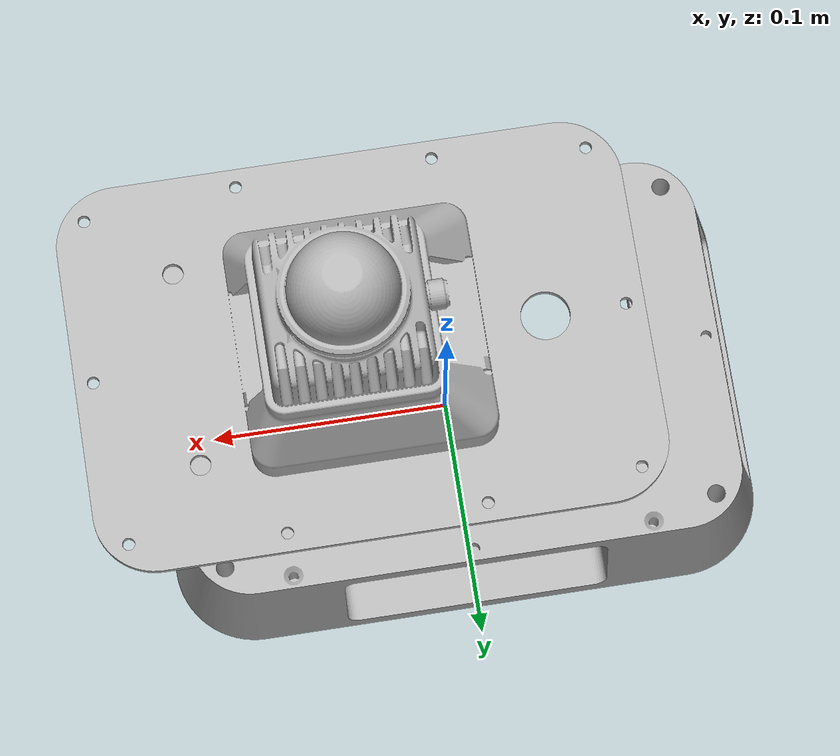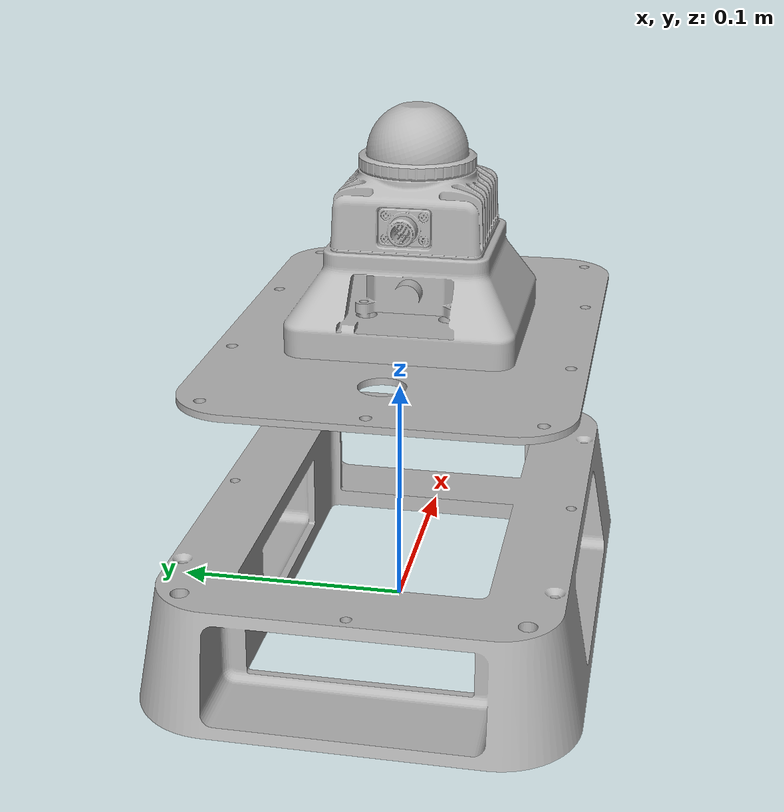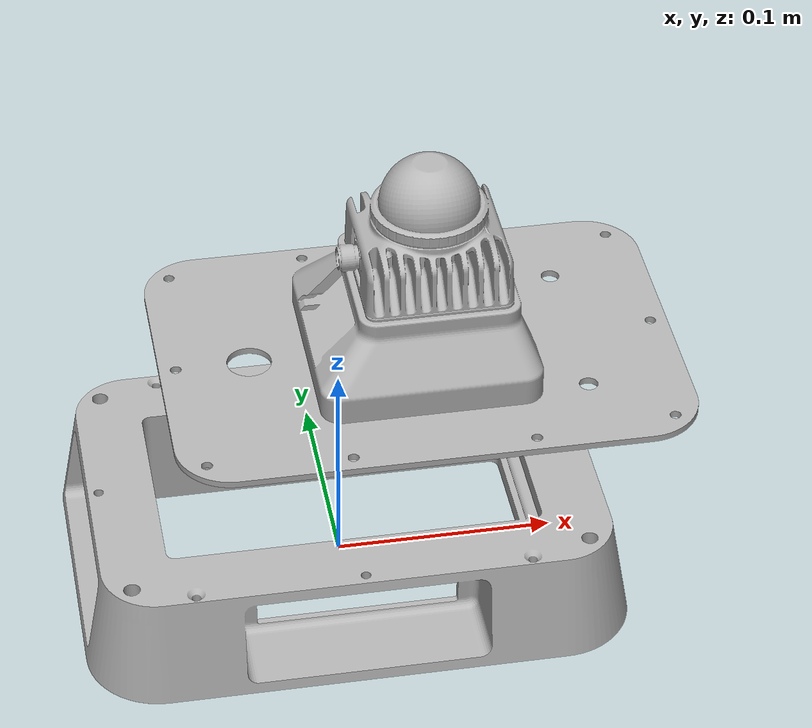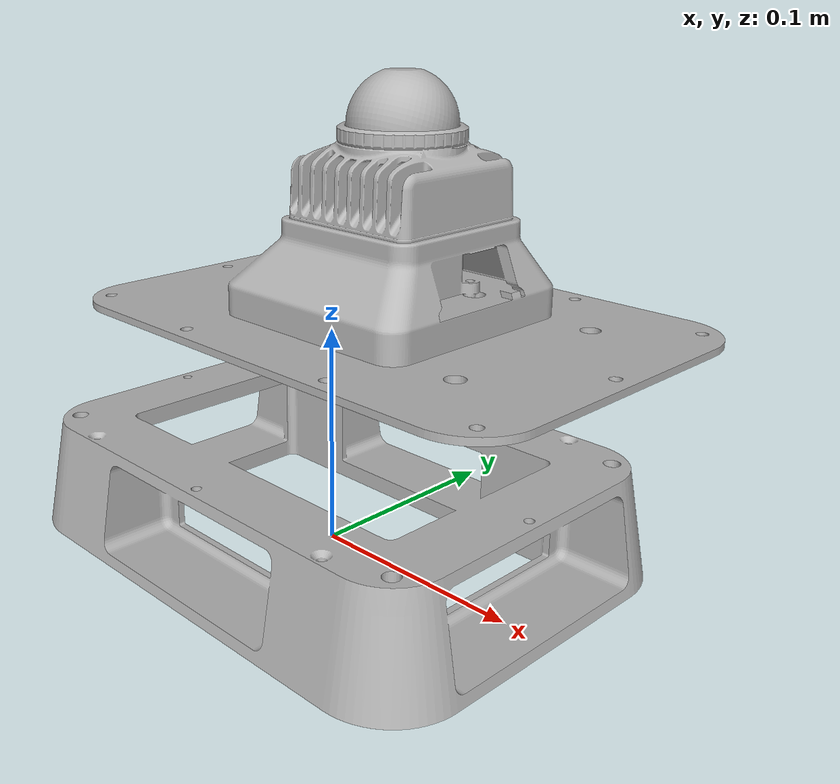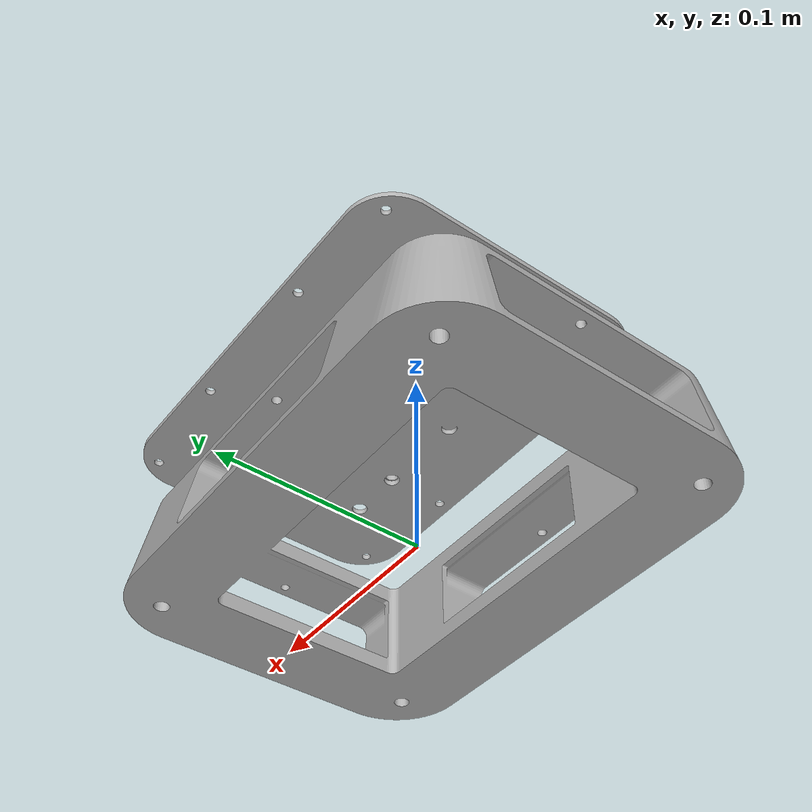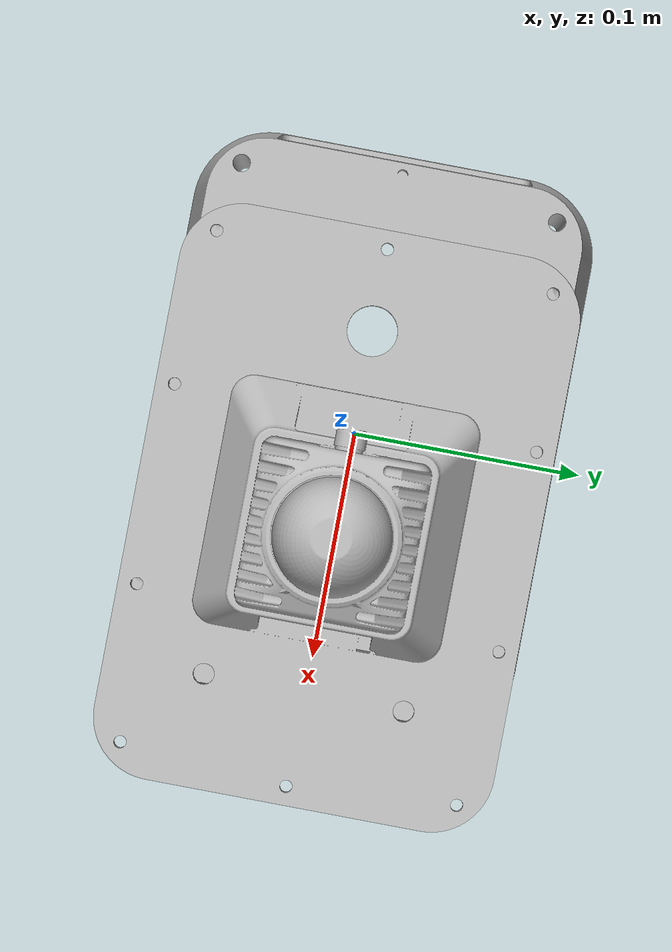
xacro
<?xml version="1.0"?>
<robot name="mid360_sensor_kit" xmlns:xacro="http://www.ros.org/wiki/xacro">

  <xacro:property name="M_PI" value="3.1415926535897931" />

  <material name="silver">
    <color rgba="0.700 0.700 0.700 1.000" />
  </material>

  <link name="top_sensor_kit_link" />

  <joint name="vision_sensor_kit_base_joint" type="fixed">
    <origin xyz="0 0 0.045" rpy="0 0 0" />
    <parent link="top_sensor_kit_link" />
    <child link="vision_sensor_kit_base_link" />
  </joint>

  <link name="vision_sensor_kit_base_link">
    <visual>
      <origin xyz="0 0 -0.345" rpy="${M_PI/2} 0 ${M_PI/2}" />
      <geometry>
        <mesh
          filename="package://vision_sensor_kit_bringup/meshes/vision_kit_base.stl"
          scale="0.001 0.001 0.001" />
      </geometry>
      <material name="silver" />
    </visual>
    <collision>
      <origin xyz="0 0 -0.345" rpy="${M_PI/2} 0 ${M_PI/2}" />
      <geometry>
        <mesh
          filename="package://vision_sensor_kit_bringup/meshes/vision_kit_base.stl"
          scale="0.001 0.001 0.001" />
      </geometry>
    </collision>
  </link>

  <joint name="mid360_sensor_kit_base_joint" type="fixed">
    <origin xyz="0 0 0.045" rpy="0 0 0" />
    <parent link="top_sensor_kit_link" />
    <child link="mid360_sensor_kit_base_link" />
  </joint>

  <link name="mid360_sensor_kit_base_link">
    <inertial>
      <origin xyz="0.035 0 0.067" rpy="0 0 0" />
      <mass value="0.0" />
      <inertia ixx="0.0" iyy="0.0" izz="0.0" ixy="0.0" iyz="0.0" ixz="0.0" />
    </inertial>
    <visual>
      <origin xyz="0.035 0 0.067" rpy="0 0 0" />
      <geometry>
        <mesh
          filename="package://mid360_sensor_kit_bringup/meshes/mid360_sensor_kit_base_link.stl"
          scale="0.001 0.001 0.001" />
      </geometry>
      <material name="silver" />
    </visual>
    <collision>
      <origin xyz="0.035 0 0.067" rpy="0 0 0" />
      <geometry>
        <mesh
          filename="package://mid360_sensor_kit_bringup/meshes/mid360_sensor_kit_base_link.stl"
          scale="0.001 0.001 0.001" />
      </geometry>
    </collision>
  </link>

  <joint name="hi14_imu_joint" type="fixed">
    <origin xyz="0.035 0.0 0.03" rpy="0 0 ${M_PI/2}" />
    <parent link="mid360_sensor_kit_base_link" />
    <child link="hi14_imu_frame" />
  </joint>

  <link name="hi14_imu_frame">
  </link>

  <joint name="livox_joint" type="fixed">
    <origin xyz="0.035 0.0 0.087483" rpy="0 0 0" />
    <parent link="mid360_sensor_kit_base_link" />
    <child link="livox_frame" />
  </joint>

  <link name="livox_frame">
  </link>

</robot>
